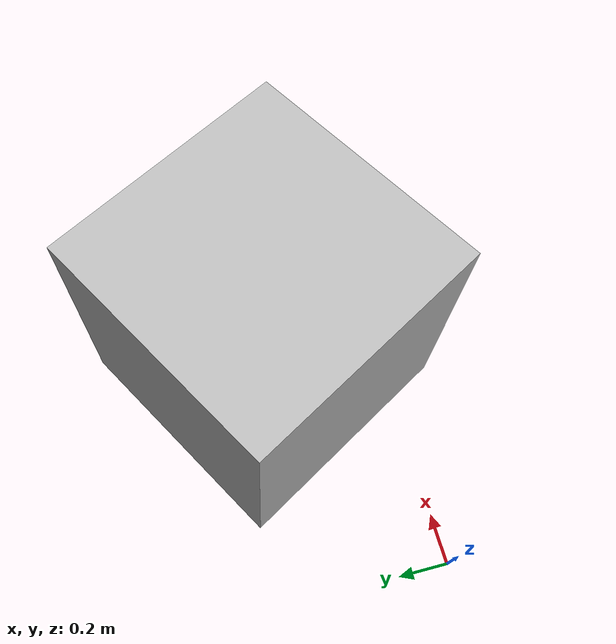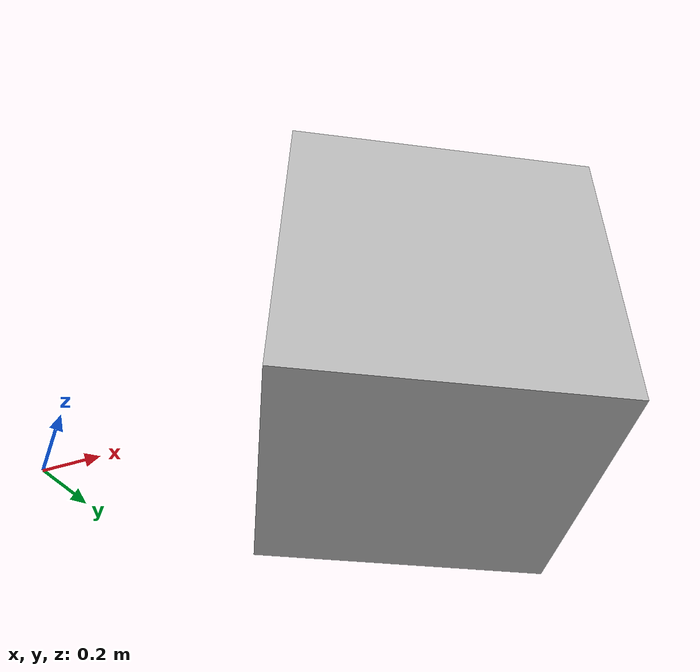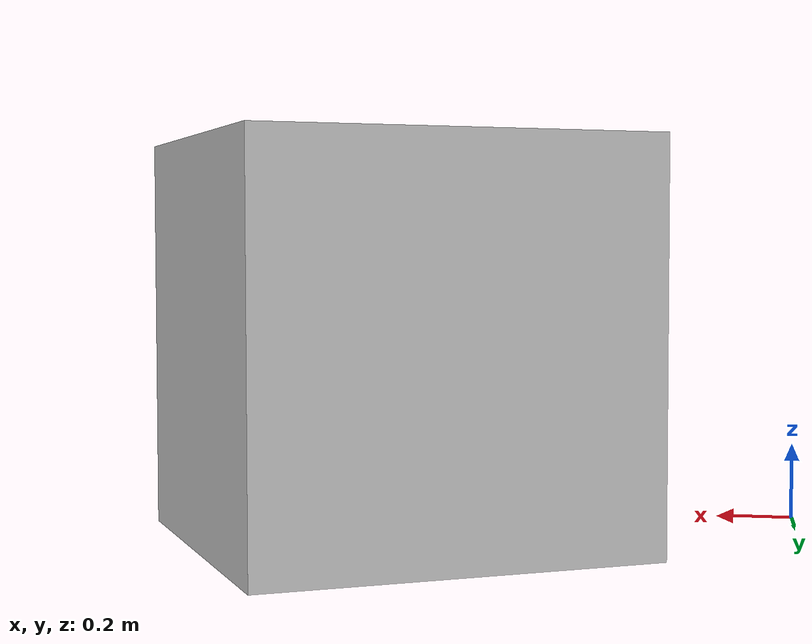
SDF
<?xml version='1.0'?>
<sdf version='1.6'>
		<model name="testlinka">
			<self_collide>true</self_collide>
			<pose>0.0 0.0 0.0 0.0 0.0 0.0</pose>
			<!-- Start of parts of the pmodel testlinka -->
			<!-- End of parts of the pmodel testlinka -->

			<!-- Start of links of the pmodel testlinka -->
			<!-- link full name is testlinka::linkA -->
			<link name="1-linkA">
					<pose>1.0 0.5 0.5 1.5707999467849731 3.141590118408203 -1.0471999645233154</pose>
					<inertial>
						<pose>0.0 0.0 0.0 0.0 0.0 0.0</pose>
						<inertia>
							<ixx>1.0</ixx>
							<ixy>0.0</ixy>
							<ixz>0.0</ixz>
							<iyy>1.0</iyy>
							<iyz>0.0</iyz>
							<izz>1.0</izz>
						</inertia>
						<mass>1.0</mass>
					</inertial>
					<!-- body full name is testlinka::linkA::bodyA -->
					<collision name="1--bodyA">
						<laser_retro>0.0</laser_retro>
						<pose>0.0 0.0 0.0 0.0 0.0 0.0</pose>
						<geometry>
							<box>
								<size>1.0 1.0 1.0</size>
							</box>
						</geometry>
						<surface>
							<bounce>
								<restitution_coefficient>0.0</restitution_coefficient>
								<threshold>100000.0</threshold>
							</bounce>
							<friction>
								<ode>
									<mu>1.0</mu>
									<mu2>1.0</mu2>
									<fdir1>0.0 0.0 0.0</fdir1>
									<slip1>0.0</slip1>
									<slip2>0.0</slip2>
								</ode>
								<torsional>
									<coefficient>1.0</coefficient>
									<surface_radius>0.0</surface_radius>
								</torsional>
							</friction>
						</surface>
					</collision>
					<visual name="1--bodyA">
						<laser_retro>0.0</laser_retro>
						<pose>0.0 0.0 0.0 0.0 0.0 0.0</pose>
						<geometry>
							<box>
								<size>1.0 1.0 1.0</size>
							</box>
						</geometry>
						<surface>
							<bounce>
								<restitution_coefficient>0.0</restitution_coefficient>
								<threshold>100000.0</threshold>
							</bounce>
							<friction>
								<ode>
									<mu>1.0</mu>
									<mu2>1.0</mu2>
									<fdir1>0.0 0.0 0.0</fdir1>
									<slip1>0.0</slip1>
									<slip2>0.0</slip2>
								</ode>
								<torsional>
									<coefficient>1.0</coefficient>
									<surface_radius>0.0</surface_radius>
								</torsional>
							</friction>
						</surface>
					</visual>
			</link>
			<!-- End of links of the pmodel testlinka -->

			<!-- Start of joints of the pmodel testlinka -->
			<!-- End of joints of the pmodel testlinka -->

			<!-- Start of fixed connections of the pmodel testlinka -->
			<!-- End of fixed connections of the pmodel testlinka -->
		</model>
</sdf>
